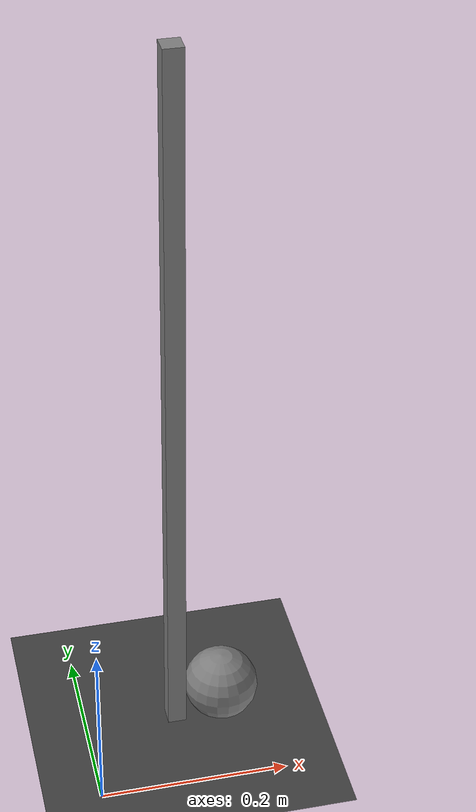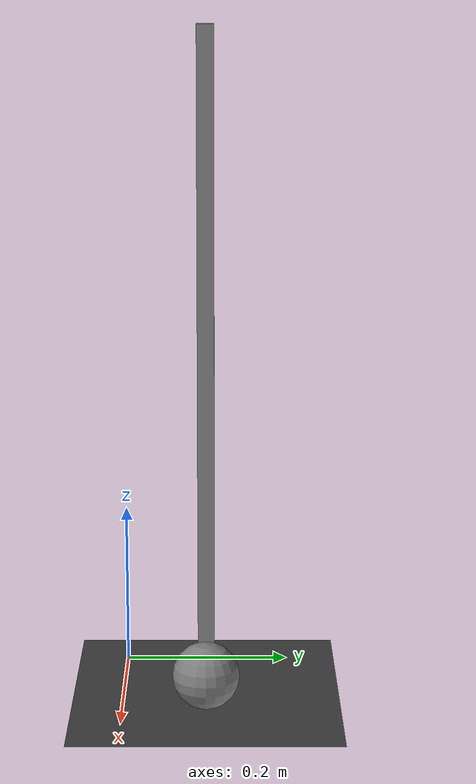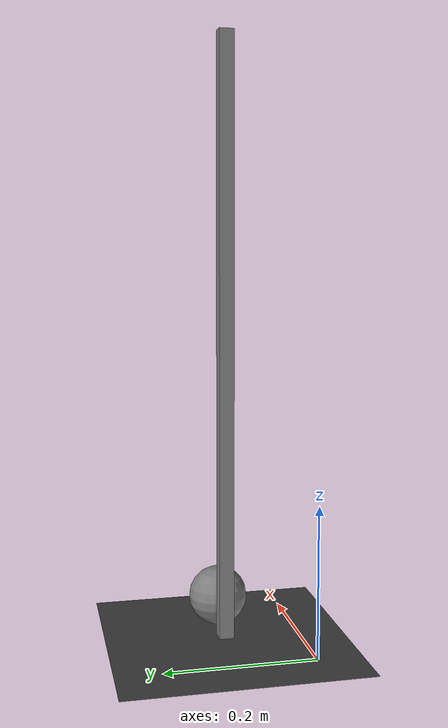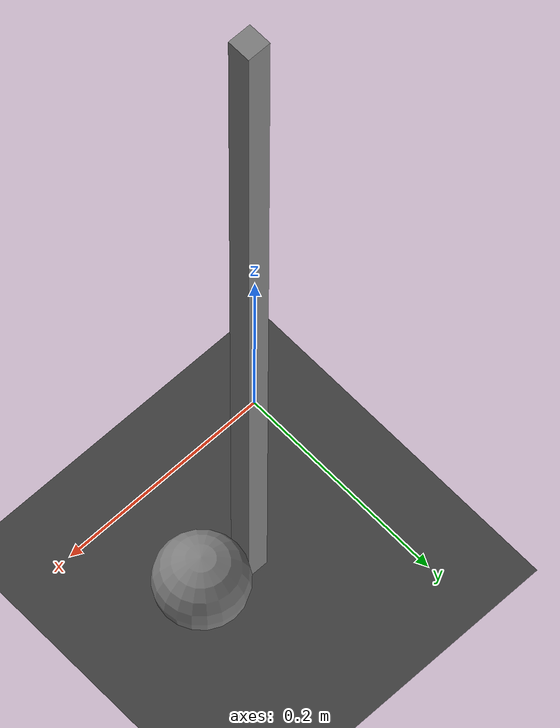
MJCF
<mujoco model='guro-v1'>
  <compiler inertiafromgeom='auto' angle='degree'/>
  <option timestep='0.001' >
  </option>

  	<visual>
  		<global fovy='90'/>
	    <quality shadowsize='4096'/>
	    <rgba force='1 0 0 1' joint='1 0 0 1'/>
	    <scale framelength='0.5' framewidth='0.005' forcewidth='0.0075' contactwidth='0.1' contactheight='0.01'/>
  	</visual>

	 <default>
        <geom  condim="1" pos='0 0 0'/>
		<joint limited="true"/>
	    <motor ctrllimited='true'/>
	    <mesh scale='0.001 0.001 0.001'/>
	    <default class='axis'>
	    	<geom type='box' mass='0.001'/>
	    </default>
	</default>

	<asset>
	    <texture type='skybox' builtin='gradient' width='128' height='128' rgb1='0.4 0.6 0.8' rgb2='0 0 0'/>
	    <texture name='plane' type='2d' builtin='checker' rgb1='0.2 0.2 0.2' rgb2='0.3 0.3 0.3' width='512' height='512'/>
	    <material name='plane' reflectance='0.0' texture='plane' texrepeat='2 2' texuniform='true'/>
	</asset>

  <worldbody>

	<light directional="true" cutoff="4" exponent="20" diffuse="1 1 1" specular="0 0 0" pos="0 .3 2.5" dir="0 -.3 -2.5 "/>
	<geom name='floor' pos='0 0 0' size='1 1 .125' type='plane' material='plane' condim='3' conaffinity="15"
		solref='0.10975158338754316 0' solimp='25.293217747579927 0.0 0.3611646095232781'/>
	<!-- best values so far: SCALED Inputs: [0.004, 0, 0, 7.084220697357011, 0.005414183694608321] Cost: -353.0
		 BEST BEFORE were: solref='0.003 0.0001' solimp='0.5 0.65 0.00001'-->

  	<body name='linear_guide'  pos='0.1 0.1 0'>
 		<geom type='box' size='0.01 0.01 0.4' pos='0 0 0.4'/>

	  	<body name='falling_apple' pos='0.051 0 0.04'>
	  		<joint type="slide" axis="0 0 1" limited='false' damping='0.1736' frictionloss='1.618'/>
	  		<geom type='sphere' size="0.04" pos='0 0 0' condim='3'/>
	  		<inertial mass='0.486' pos='0 0 0' diaginertia='0.001 0.001 0.001'/>
	  	</body>
	</body>

  </worldbody>

</mujoco>
